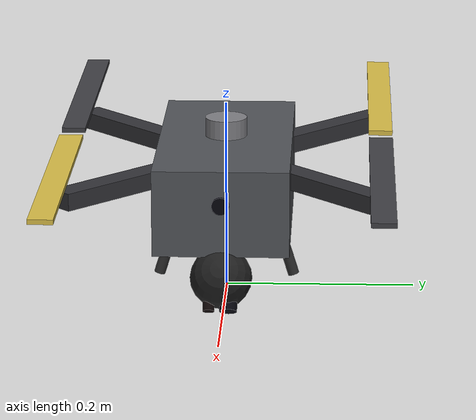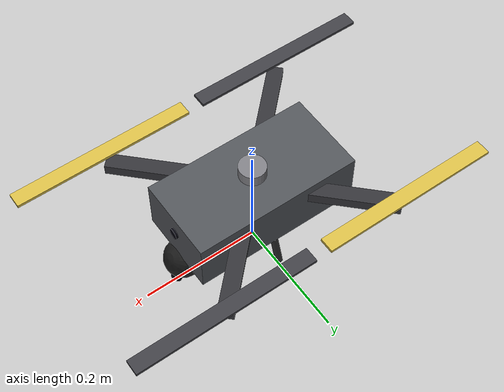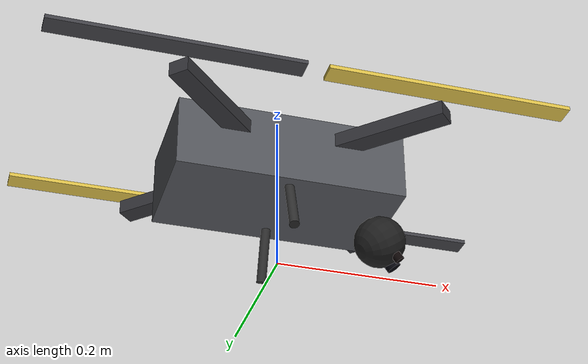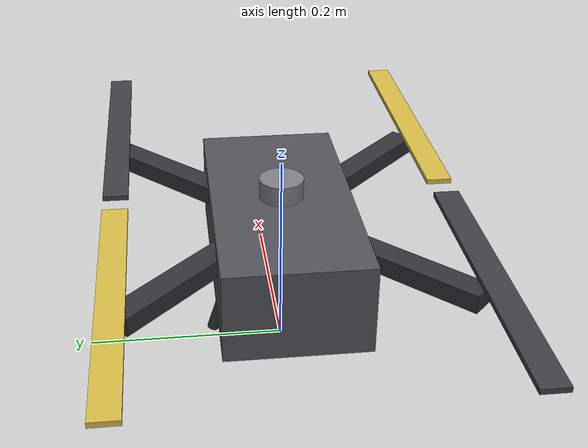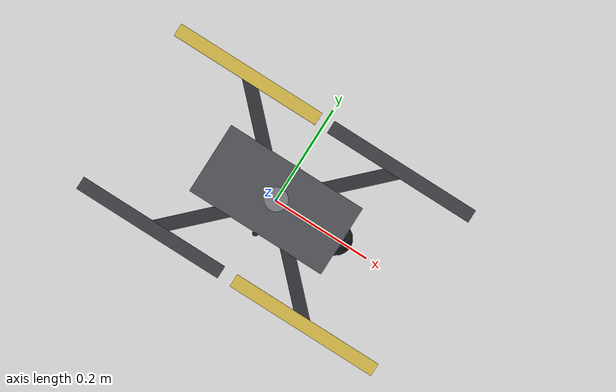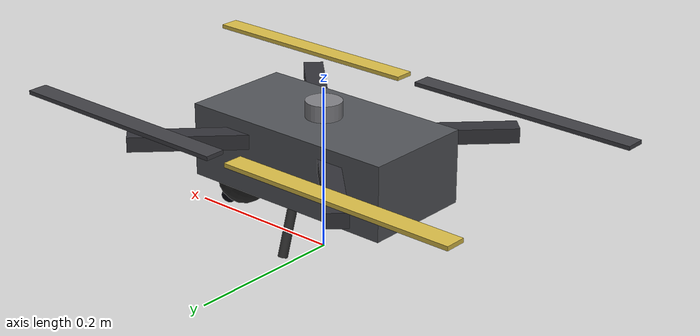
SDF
<?xml version="1.0"?>
<sdf version="1.9">
  <model name="m4td">
    <pose>0 0 0.12 0 0 0</pose>

    <!-- ===================== 기체 본체 ===================== -->
    <link name="base_link">
      <inertial>
        <mass>1.69</mass> <!-- 본체+배터리 (로터 4x0.04 제외) -->
        <inertia>
          <ixx>0.021</ixx><iyy>0.021</iyy><izz>0.036</izz>
          <ixy>0</ixy><ixz>0</ixz><iyz>0</iyz>
        </inertia>
      </inertial>

      <visual name="fuselage">
        <geometry><box><size>0.28 0.14 0.09</size></box></geometry>
        <material><ambient>0.16 0.17 0.18 1</ambient><diffuse>0.32 0.33 0.35 1</diffuse></material>
      </visual>
      <collision name="fuselage_col">
        <geometry><box><size>0.28 0.14 0.09</size></box></geometry>
      </collision>

      <!-- 4 폴딩암 -->
      <visual name="arm_fr"><pose>0.082 -0.082 0.02 0 0 -0.785</pose>
        <geometry><box><size>0.22 0.025 0.018</size></box></geometry>
        <material><diffuse>0.2 0.2 0.22 1</diffuse></material></visual>
      <visual name="arm_fl"><pose>0.082 0.082 0.02 0 0 0.785</pose>
        <geometry><box><size>0.22 0.025 0.018</size></box></geometry>
        <material><diffuse>0.2 0.2 0.22 1</diffuse></material></visual>
      <visual name="arm_br"><pose>-0.082 -0.082 0.02 0 0 0.785</pose>
        <geometry><box><size>0.22 0.025 0.018</size></box></geometry>
        <material><diffuse>0.2 0.2 0.22 1</diffuse></material></visual>
      <visual name="arm_bl"><pose>-0.082 0.082 0.02 0 0 -0.785</pose>
        <geometry><box><size>0.22 0.025 0.018</size></box></geometry>
        <material><diffuse>0.2 0.2 0.22 1</diffuse></material></visual>

      <!-- 상부 RTK 돔 + 전방위 비전 센서 표식 -->
      <visual name="rtk_dome"><pose>0 0 0.055 0 0 0</pose>
        <geometry><cylinder><radius>0.022</radius><length>0.02</length></cylinder></geometry>
        <material><diffuse>0.5 0.5 0.52 1</diffuse></material></visual>
      <visual name="vision_front"><pose>0.142 0 0.01 0 1.5708 0</pose>
        <geometry><cylinder><radius>0.009</radius><length>0.004</length></cylinder></geometry>
        <material><diffuse>0.02 0.02 0.05 1</diffuse></material></visual>

      <!-- 랜딩 레그 -->
      <visual name="leg_l"><pose>0 0.06 -0.07 0.3 0 0</pose>
        <geometry><cylinder><radius>0.006</radius><length>0.08</length></cylinder></geometry>
        <material><diffuse>0.18 0.18 0.18 1</diffuse></material></visual>
      <visual name="leg_r"><pose>0 -0.06 -0.07 -0.3 0 0</pose>
        <geometry><cylinder><radius>0.006</radius><length>0.08</length></cylinder></geometry>
        <material><diffuse>0.18 0.18 0.18 1</diffuse></material></visual>
      <collision name="legs_col"><pose>0 0 -0.1 0 0 0</pose>
        <geometry><box><size>0.14 0.16 0.02</size></box></geometry></collision>

      <sensor name="imu_sensor" type="imu">
        <pose>0 0 0 3.141593 0 0</pose>
        <always_on>1</always_on>
        <update_rate>1000</update_rate>
      </sensor>
    </link>

    <!-- ============ 짐벌 (광각+텔레+열화상+LRF, 전방 하향 ~55°) ============ -->
    <link name="gimbal_link">
      <pose>0.13 0 -0.07 0 0.96 0</pose>
      <inertial>
        <mass>0.16</mass>
        <inertia><ixx>0.0001</ixx><iyy>0.0001</iyy><izz>0.0001</izz>
          <ixy>0</ixy><ixz>0</ixz><iyz>0</iyz></inertia>
      </inertial>
      <visual name="gimbal_body">
        <geometry><sphere><radius>0.032</radius></sphere></geometry>
        <material><diffuse>0.12 0.12 0.12 1</diffuse></material>
      </visual>
      <visual name="lens_wide">
        <pose>0.03 0.008 0 0 1.5708 0</pose>
        <geometry><cylinder><radius>0.009</radius><length>0.012</length></cylinder></geometry>
        <material><diffuse>0.02 0.02 0.05 1</diffuse></material>
      </visual>
      <visual name="lens_ir">
        <pose>0.03 -0.012 0 0 1.5708 0</pose>
        <geometry><cylinder><radius>0.006</radius><length>0.012</length></cylinder></geometry>
        <material><diffuse>0.05 0.02 0.02 1</diffuse></material>
      </visual>
      <sensor name="eo_camera" type="camera">
        <always_on>1</always_on>
        <update_rate>15</update_rate>
        <visualize>1</visualize>
        <topic>eo_camera</topic>
        <camera>
          <horizontal_fov>1.15</horizontal_fov>
          <image><width>640</width><height>360</height><format>R8G8B8</format></image>
          <clip><near>0.1</near><far>800</far></clip>
        </camera>
      </sensor>
    </link>
    <joint name="gimbal_joint" type="fixed">
      <parent>base_link</parent><child>gimbal_link</child>
    </joint>

    <!-- ===================== 로터 4개 ===================== -->
    <!-- ArduPilot Quad-X: 0=FR(CCW) 1=BL(CCW) 2=FL(CW) 3=BR(CW) -->
    <link name="rotor_0">
      <pose>0.163 -0.163 0.045 0 0 0</pose>
      <inertial><mass>0.04</mass>
        <inertia><ixx>2e-5</ixx><iyy>3.2e-4</iyy><izz>3.3e-4</izz>
          <ixy>0</ixy><ixz>0</ixz><iyz>0</iyz></inertia></inertial>
      <visual name="prop"><geometry><box><size>0.30 0.025 0.005</size></box></geometry>
        <material><diffuse>0.85 0.74 0.28 1</diffuse></material></visual>
      <collision name="prop_col"><geometry><box><size>0.30 0.025 0.005</size></box></geometry></collision>
    </link>
    <joint name="rotor_0_joint" type="revolute">
      <parent>base_link</parent><child>rotor_0</child>
      <axis><xyz>0 0 1</xyz><limit><lower>-1e16</lower><upper>1e16</upper></limit>
        <dynamics><damping>0.002</damping></dynamics></axis>
    </joint>

    <link name="rotor_1">
      <pose>-0.163 0.163 0.045 0 0 0</pose>
      <inertial><mass>0.04</mass>
        <inertia><ixx>2e-5</ixx><iyy>3.2e-4</iyy><izz>3.3e-4</izz>
          <ixy>0</ixy><ixz>0</ixz><iyz>0</iyz></inertia></inertial>
      <visual name="prop"><geometry><box><size>0.30 0.025 0.005</size></box></geometry>
        <material><diffuse>0.85 0.74 0.28 1</diffuse></material></visual>
      <collision name="prop_col"><geometry><box><size>0.30 0.025 0.005</size></box></geometry></collision>
    </link>
    <joint name="rotor_1_joint" type="revolute">
      <parent>base_link</parent><child>rotor_1</child>
      <axis><xyz>0 0 1</xyz><limit><lower>-1e16</lower><upper>1e16</upper></limit>
        <dynamics><damping>0.002</damping></dynamics></axis>
    </joint>

    <link name="rotor_2">
      <pose>0.163 0.163 0.045 0 0 0</pose>
      <inertial><mass>0.04</mass>
        <inertia><ixx>2e-5</ixx><iyy>3.2e-4</iyy><izz>3.3e-4</izz>
          <ixy>0</ixy><ixz>0</ixz><iyz>0</iyz></inertia></inertial>
      <visual name="prop"><geometry><box><size>0.30 0.025 0.005</size></box></geometry>
        <material><diffuse>0.25 0.25 0.27 1</diffuse></material></visual>
      <collision name="prop_col"><geometry><box><size>0.30 0.025 0.005</size></box></geometry></collision>
    </link>
    <joint name="rotor_2_joint" type="revolute">
      <parent>base_link</parent><child>rotor_2</child>
      <axis><xyz>0 0 1</xyz><limit><lower>-1e16</lower><upper>1e16</upper></limit>
        <dynamics><damping>0.002</damping></dynamics></axis>
    </joint>

    <link name="rotor_3">
      <pose>-0.163 -0.163 0.045 0 0 0</pose>
      <inertial><mass>0.04</mass>
        <inertia><ixx>2e-5</ixx><iyy>3.2e-4</iyy><izz>3.3e-4</izz>
          <ixy>0</ixy><ixz>0</ixz><iyz>0</iyz></inertia></inertial>
      <visual name="prop"><geometry><box><size>0.30 0.025 0.005</size></box></geometry>
        <material><diffuse>0.25 0.25 0.27 1</diffuse></material></visual>
      <collision name="prop_col"><geometry><box><size>0.30 0.025 0.005</size></box></geometry></collision>
    </link>
    <joint name="rotor_3_joint" type="revolute">
      <parent>base_link</parent><child>rotor_3</child>
      <axis><xyz>0 0 1</xyz><limit><lower>-1e16</lower><upper>1e16</upper></limit>
        <dynamics><damping>0.002</damping></dynamics></axis>
    </joint>

    <!-- ===================== 양력 모델 (LiftDrag) ===================== -->
    <!-- 12" 프롭 추정: 1.85kg 호버 ~45% 스로틀 목표 1차 산정 -->
    <plugin filename="gz-sim-lift-drag-system" name="gz::sim::systems::LiftDrag">
      <a0>0.3</a0><cla>4.25</cla><cda>0.10</cda><cma>0</cma>
      <alpha_stall>1.4</alpha_stall><cla_stall>-0.025</cla_stall>
      <cda_stall>0.0</cda_stall><cma_stall>0</cma_stall>
      <area>0.0035</area><air_density>1.2041</air_density>
      <cp>0.075 0 0</cp><forward>1 0 0</forward><upward>0 0 1</upward>
      <link_name>rotor_0</link_name>
    </plugin>
    <plugin filename="gz-sim-lift-drag-system" name="gz::sim::systems::LiftDrag">
      <a0>0.3</a0><cla>4.25</cla><cda>0.10</cda><cma>0</cma>
      <alpha_stall>1.4</alpha_stall><cla_stall>-0.025</cla_stall>
      <cda_stall>0.0</cda_stall><cma_stall>0</cma_stall>
      <area>0.0035</area><air_density>1.2041</air_density>
      <cp>0.075 0 0</cp><forward>1 0 0</forward><upward>0 0 1</upward>
      <link_name>rotor_1</link_name>
    </plugin>
    <plugin filename="gz-sim-lift-drag-system" name="gz::sim::systems::LiftDrag">
      <a0>0.3</a0><cla>4.25</cla><cda>0.10</cda><cma>0</cma>
      <alpha_stall>1.4</alpha_stall><cla_stall>-0.025</cla_stall>
      <cda_stall>0.0</cda_stall><cma_stall>0</cma_stall>
      <area>0.0035</area><air_density>1.2041</air_density>
      <cp>-0.075 0 0</cp><forward>-1 0 0</forward><upward>0 0 1</upward>
      <link_name>rotor_2</link_name>
    </plugin>
    <plugin filename="gz-sim-lift-drag-system" name="gz::sim::systems::LiftDrag">
      <a0>0.3</a0><cla>4.25</cla><cda>0.10</cda><cma>0</cma>
      <alpha_stall>1.4</alpha_stall><cla_stall>-0.025</cla_stall>
      <cda_stall>0.0</cda_stall><cma_stall>0</cma_stall>
      <area>0.0035</area><air_density>1.2041</air_density>
      <cp>-0.075 0 0</cp><forward>-1 0 0</forward><upward>0 0 1</upward>
      <link_name>rotor_3</link_name>
    </plugin>

    <plugin filename="gz-sim-apply-joint-force-system"
            name="gz::sim::systems::ApplyJointForce">
      <joint_name>rotor_0_joint</joint_name>
    </plugin>
    <plugin filename="gz-sim-apply-joint-force-system"
            name="gz::sim::systems::ApplyJointForce">
      <joint_name>rotor_1_joint</joint_name>
    </plugin>
    <plugin filename="gz-sim-apply-joint-force-system"
            name="gz::sim::systems::ApplyJointForce">
      <joint_name>rotor_2_joint</joint_name>
    </plugin>
    <plugin filename="gz-sim-apply-joint-force-system"
            name="gz::sim::systems::ApplyJointForce">
      <joint_name>rotor_3_joint</joint_name>
    </plugin>
    <plugin filename="gz-sim-joint-state-publisher-system"
            name="gz::sim::systems::JointStatePublisher">
    </plugin>

    <!-- ===================== ArduPilot FDM 브리지 ===================== -->
    <!-- SITL: sim_vehicle.py -v ArduCopter -f JSON (model JSON, ardupilot_gazebo 빌드) -->
    <plugin name="ArduPilotPlugin" filename="ArduPilotPlugin">
      <fdm_addr>127.0.0.1</fdm_addr>
      <fdm_port_in>9002</fdm_port_in>
      <connectionTimeoutMaxCount>5</connectionTimeoutMaxCount>
      <lock_step>1</lock_step>
      <have_32_channels>0</have_32_channels>
      <modelXYZToAirplaneXForwardZDown>0 0 0 3.141593 0 0</modelXYZToAirplaneXForwardZDown>
      <gazeboXYZToNED>0 0 0 3.141593 0 1.5708</gazeboXYZToNED>
      <imuName>base_link::imu_sensor</imuName>

      <control channel="0">
        <jointName>rotor_0_joint</jointName>
        <useForce>1</useForce>
        <multiplier>1100</multiplier><offset>0</offset>
        <servo_min>1100</servo_min><servo_max>1900</servo_max>
        <type>VELOCITY</type>
        <p_gain>0.20</p_gain><i_gain>0</i_gain><d_gain>0</d_gain>
        <i_max>0</i_max><i_min>0</i_min>
        <cmd_max>2.0</cmd_max><cmd_min>-2.0</cmd_min>
      </control>
      <control channel="1">
        <jointName>rotor_1_joint</jointName>
        <useForce>1</useForce>
        <multiplier>1100</multiplier><offset>0</offset>
        <servo_min>1100</servo_min><servo_max>1900</servo_max>
        <type>VELOCITY</type>
        <p_gain>0.20</p_gain><i_gain>0</i_gain><d_gain>0</d_gain>
        <i_max>0</i_max><i_min>0</i_min>
        <cmd_max>2.0</cmd_max><cmd_min>-2.0</cmd_min>
      </control>
      <control channel="2">
        <jointName>rotor_2_joint</jointName>
        <useForce>1</useForce>
        <multiplier>-1100</multiplier><offset>0</offset>
        <servo_min>1100</servo_min><servo_max>1900</servo_max>
        <type>VELOCITY</type>
        <p_gain>0.20</p_gain><i_gain>0</i_gain><d_gain>0</d_gain>
        <i_max>0</i_max><i_min>0</i_min>
        <cmd_max>2.0</cmd_max><cmd_min>-2.0</cmd_min>
      </control>
      <control channel="3">
        <jointName>rotor_3_joint</jointName>
        <useForce>1</useForce>
        <multiplier>-1100</multiplier><offset>0</offset>
        <servo_min>1100</servo_min><servo_max>1900</servo_max>
        <type>VELOCITY</type>
        <p_gain>0.20</p_gain><i_gain>0</i_gain><d_gain>0</d_gain>
        <i_max>0</i_max><i_min>0</i_min>
        <cmd_max>2.0</cmd_max><cmd_min>-2.0</cmd_min>
      </control>
    </plugin>
  </model>
</sdf>
